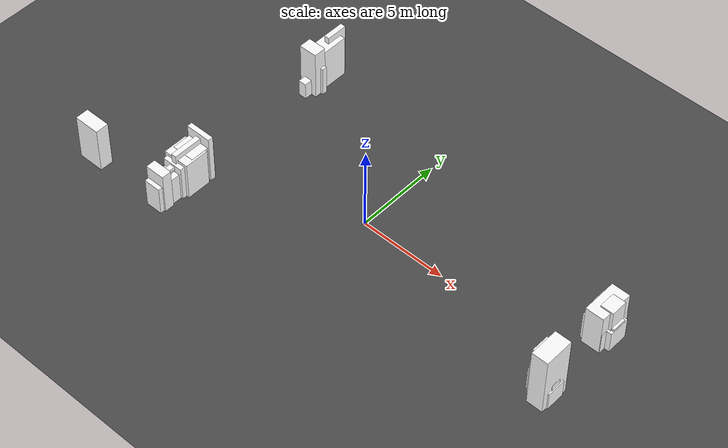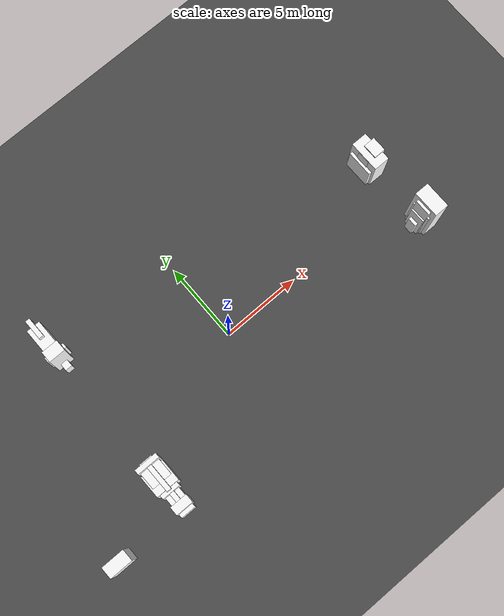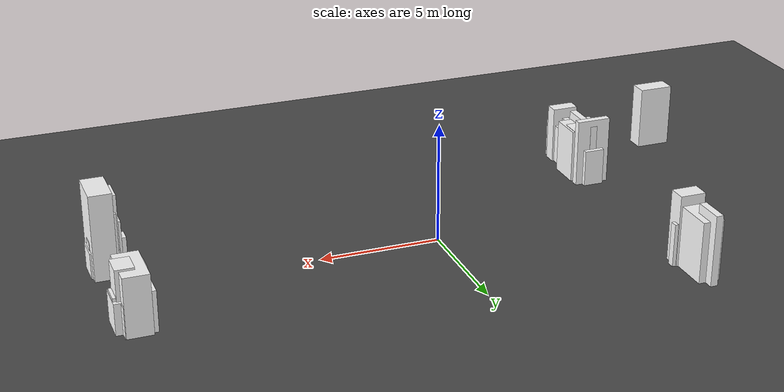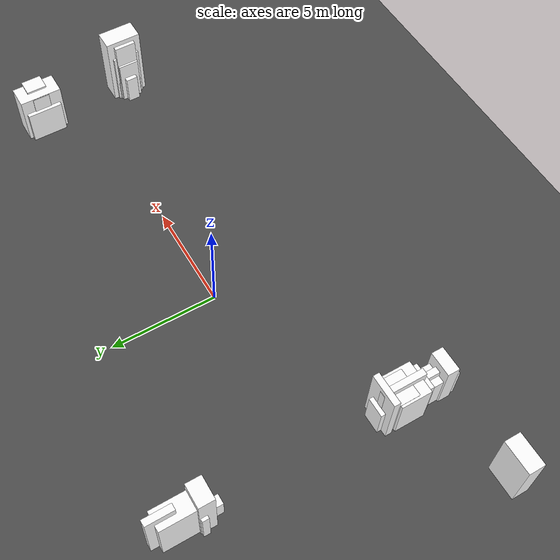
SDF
<sdf version="1.6">
 <world name="mirror_edge_world">
  <model name="ground_plane">
   <static>true</static>
   <link name="link">
    <collision name="collision">
     <geometry><plane><normal>0 0 1</normal><size>100 100</size></plane></geometry>
    </collision>
    <visual name="visual">
     <geometry><plane><normal>0 0 1</normal><size>100 100</size></plane></geometry>
     <material>
      <ambient>0.3 0.3 0.3 1</ambient>
      <diffuse>0.3 0.3 0.3 1</diffuse>
      <specular>0.5 0.5 0.5 1</specular>
      <emissive>0 0 0 1</emissive>
     </material>
    </visual>
   </link>
  </model>
  <model name="roadside_block_0_60_0">
   <static>true</static>
   <link name="link">
    <pose>13.2291969559636 2.496670991989923 1.2780243821680772 0 0 0</pose>
    <collision name="collision">
     <geometry><box><size>0.7523701492959062 0.9459473551256748 2.5560487643361545</size></box></geometry>
    </collision>
    <visual name="visual">
     <geometry><box><size>0.7523701492959062 0.9459473551256748 2.5560487643361545</size></box></geometry>
     <material>
      <ambient>1 1 1 1</ambient>
      <diffuse>1 1 1 1</diffuse>
      <specular>0.9 0.9 0.9 1</specular>
      <emissive>0.05 0.05 0.05 1</emissive>
     </material>
    </visual>
   </link>
  </model>
  <model name="roadside_block_0_61_0">
   <static>true</static>
   <link name="link">
    <pose>13.199283571896325 -2.1033290080100766 1.8044970207919566 0 0 0</pose>
    <collision name="collision">
     <geometry><box><size>0.9252940617336647 1.6936333954345684 3.6089940415839132</size></box></geometry>
    </collision>
    <visual name="visual">
     <geometry><box><size>0.9252940617336647 1.6936333954345684 3.6089940415839132</size></box></geometry>
     <material>
      <ambient>1 1 1 1</ambient>
      <diffuse>1 1 1 1</diffuse>
      <specular>0.9 0.9 0.9 1</specular>
      <emissive>0.05 0.05 0.05 1</emissive>
     </material>
    </visual>
   </link>
  </model>
  <model name="roadside_block_0_62_0">
   <static>true</static>
   <link name="link">
    <pose>13.169370187829053 2.496670991989923 0.7141956143638712 0 0 0</pose>
    <collision name="collision">
     <geometry><box><size>1.133888169362819 0.825111085626994 1.4283912287277425</size></box></geometry>
    </collision>
    <visual name="visual">
     <geometry><box><size>1.133888169362819 0.825111085626994 1.4283912287277425</size></box></geometry>
     <material>
      <ambient>1 1 1 1</ambient>
      <diffuse>1 1 1 1</diffuse>
      <specular>0.9 0.9 0.9 1</specular>
      <emissive>0.05 0.05 0.05 1</emissive>
     </material>
    </visual>
   </link>
  </model>
  <model name="roadside_block_0_63_0">
   <static>true</static>
   <link name="link">
    <pose>13.13945680376178 -2.1033290080100766 0.5408230810529004 0 0 0</pose>
    <collision name="collision">
     <geometry><box><size>1.19172148663598 1.081447437679071 1.081646162105801</size></box></geometry>
    </collision>
    <visual name="visual">
     <geometry><box><size>1.19172148663598 1.081447437679071 1.081646162105801</size></box></geometry>
     <material>
      <ambient>1 1 1 1</ambient>
      <diffuse>1 1 1 1</diffuse>
      <specular>0.9 0.9 0.9 1</specular>
      <emissive>0.05 0.05 0.05 1</emissive>
     </material>
    </visual>
   </link>
  </model>
  <model name="roadside_block_0_64_0">
   <static>true</static>
   <link name="link">
    <pose>13.109543419694505 2.496670991989923 0.6460491409482583 0 0 0</pose>
    <collision name="collision">
     <geometry><box><size>1.2808879513641809 1.216423987140057 1.2920982818965165</size></box></geometry>
    </collision>
    <visual name="visual">
     <geometry><box><size>1.2808879513641809 1.216423987140057 1.2920982818965165</size></box></geometry>
     <material>
      <ambient>1 1 1 1</ambient>
      <diffuse>1 1 1 1</diffuse>
      <specular>0.9 0.9 0.9 1</specular>
      <emissive>0.05 0.05 0.05 1</emissive>
     </material>
    </visual>
   </link>
  </model>
  <model name="roadside_block_0_65_0">
   <static>true</static>
   <link name="link">
    <pose>13.079630035627233 -2.1033290080100766 1.0048054624046208 0 0 0</pose>
    <collision name="collision">
     <geometry><box><size>1.073235619474701 0.5980408562832473 2.0096109248092415</size></box></geometry>
    </collision>
    <visual name="visual">
     <geometry><box><size>1.073235619474701 0.5980408562832473 2.0096109248092415</size></box></geometry>
     <material>
      <ambient>1 1 1 1</ambient>
      <diffuse>1 1 1 1</diffuse>
      <specular>0.9 0.9 0.9 1</specular>
      <emissive>0.05 0.05 0.05 1</emissive>
     </material>
    </visual>
   </link>
  </model>
  <model name="roadside_block_0_66_0">
   <static>true</static>
   <link name="link">
    <pose>13.04971665155996 2.496670991989923 0.6453863133050429 0 0 0</pose>
    <collision name="collision">
     <geometry><box><size>0.858200157639567 1.9722855353283018 1.2907726266100858</size></box></geometry>
    </collision>
    <visual name="visual">
     <geometry><box><size>0.858200157639567 1.9722855353283018 1.2907726266100858</size></box></geometry>
     <material>
      <ambient>1 1 1 1</ambient>
      <diffuse>1 1 1 1</diffuse>
      <specular>0.9 0.9 0.9 1</specular>
      <emissive>0.05 0.05 0.05 1</emissive>
     </material>
    </visual>
   </link>
  </model>
  <model name="roadside_block_0_67_0">
   <static>true</static>
   <link name="link">
    <pose>13.019803267492687 2.496670991989923 0.5321075928356416 0 0 0</pose>
    <collision name="collision">
     <geometry><box><size>1.3968280106473183 0.5333233486032147 1.0642151856712831</size></box></geometry>
    </collision>
    <visual name="visual">
     <geometry><box><size>1.3968280106473183 0.5333233486032147 1.0642151856712831</size></box></geometry>
     <material>
      <ambient>1 1 1 1</ambient>
      <diffuse>1 1 1 1</diffuse>
      <specular>0.9 0.9 0.9 1</specular>
      <emissive>0.05 0.05 0.05 1</emissive>
     </material>
    </visual>
   </link>
  </model>
  <model name="roadside_block_0_68_0">
   <static>true</static>
   <link name="link">
    <pose>12.989889883425413 -2.1033290080100766 0.6723400544085798 0 0 0</pose>
    <collision name="collision">
     <geometry><box><size>0.3 1.1466792959318663 1.3446801088171596</size></box></geometry>
    </collision>
    <visual name="visual">
     <geometry><box><size>0.3 1.1466792959318663 1.3446801088171596</size></box></geometry>
     <material>
      <ambient>1 1 1 1</ambient>
      <diffuse>1 1 1 1</diffuse>
      <specular>0.9 0.9 0.9 1</specular>
      <emissive>0.05 0.05 0.05 1</emissive>
     </material>
    </visual>
   </link>
  </model>
  <model name="roadside_block_0_69_0">
   <static>true</static>
   <link name="link">
    <pose>12.95997649935814 -2.1033290080100766 0.7117123567561049 0 0 0</pose>
    <collision name="collision">
     <geometry><box><size>1.4474998877966594 0.5608950036808114 1.4234247135122098</size></box></geometry>
    </collision>
    <visual name="visual">
     <geometry><box><size>1.4474998877966594 0.5608950036808114 1.4234247135122098</size></box></geometry>
     <material>
      <ambient>1 1 1 1</ambient>
      <diffuse>1 1 1 1</diffuse>
      <specular>0.9 0.9 0.9 1</specular>
      <emissive>0.05 0.05 0.05 1</emissive>
     </material>
    </visual>
   </link>
  </model>
  <model name="roadside_block_0_70_0">
   <static>true</static>
   <link name="link">
    <pose>12.930063115290867 2.496670991989923 1.234213338710715 0 0 0</pose>
    <collision name="collision">
     <geometry><box><size>1.0363355847285152 2.0 2.46842667742143</size></box></geometry>
    </collision>
    <visual name="visual">
     <geometry><box><size>1.0363355847285152 2.0 2.46842667742143</size></box></geometry>
     <material>
      <ambient>1 1 1 1</ambient>
      <diffuse>1 1 1 1</diffuse>
      <specular>0.9 0.9 0.9 1</specular>
      <emissive>0.05 0.05 0.05 1</emissive>
     </material>
    </visual>
   </link>
  </model>
  <model name="roadside_block_0_71_0">
   <static>true</static>
   <link name="link">
    <pose>12.900149731223593 -2.1033290080100766 1.1176426706234168 0 0 0</pose>
    <collision name="collision">
     <geometry><box><size>0.9081425352860963 0.9707374124296014 2.2352853412468336</size></box></geometry>
    </collision>
    <visual name="visual">
     <geometry><box><size>0.9081425352860963 0.9707374124296014 2.2352853412468336</size></box></geometry>
     <material>
      <ambient>1 1 1 1</ambient>
      <diffuse>1 1 1 1</diffuse>
      <specular>0.9 0.9 0.9 1</specular>
      <emissive>0.05 0.05 0.05 1</emissive>
     </material>
    </visual>
   </link>
  </model>
  <model name="roadside_block_0_72_0">
   <static>true</static>
   <link name="link">
    <pose>12.87023634715632 -2.1033290080100766 1.6838774126578437 0 0 0</pose>
    <collision name="collision">
     <geometry><box><size>0.641968632196994 1.016279046353737 3.3677548253156875</size></box></geometry>
    </collision>
    <visual name="visual">
     <geometry><box><size>0.641968632196994 1.016279046353737 3.3677548253156875</size></box></geometry>
     <material>
      <ambient>1 1 1 1</ambient>
      <diffuse>1 1 1 1</diffuse>
      <specular>0.9 0.9 0.9 1</specular>
      <emissive>0.05 0.05 0.05 1</emissive>
     </material>
    </visual>
   </link>
  </model>
  <model name="roadside_block_0_73_0">
   <static>true</static>
   <link name="link">
    <pose>12.840322963089045 2.496670991989923 1.2220399637515265 0 0 0</pose>
    <collision name="collision">
     <geometry><box><size>0.9191916911259636 0.800502657632286 2.444079927503053</size></box></geometry>
    </collision>
    <visual name="visual">
     <geometry><box><size>0.9191916911259636 0.800502657632286 2.444079927503053</size></box></geometry>
     <material>
      <ambient>1 1 1 1</ambient>
      <diffuse>1 1 1 1</diffuse>
      <specular>0.9 0.9 0.9 1</specular>
      <emissive>0.05 0.05 0.05 1</emissive>
     </material>
    </visual>
   </link>
  </model>
  <model name="roadside_block_0_74_0">
   <static>true</static>
   <link name="link">
    <pose>12.810409579021773 2.496670991989923 0.5 0 0 0</pose>
    <collision name="collision">
     <geometry><box><size>0.5436540283061269 0.3726882239082746 1.0</size></box></geometry>
    </collision>
    <visual name="visual">
     <geometry><box><size>0.5436540283061269 0.3726882239082746 1.0</size></box></geometry>
     <material>
      <ambient>1 1 1 1</ambient>
      <diffuse>1 1 1 1</diffuse>
      <specular>0.9 0.9 0.9 1</specular>
      <emissive>0.05 0.05 0.05 1</emissive>
     </material>
    </visual>
   </link>
  </model>
  <model name="roadside_block_0_75_0">
   <static>true</static>
   <link name="link">
    <pose>12.7804961949545 -2.1033290080100766 1.3211147076837984 0 0 0</pose>
    <collision name="collision">
     <geometry><box><size>0.32528378882911935 1.2792277091619053 2.6422294153675967</size></box></geometry>
    </collision>
    <visual name="visual">
     <geometry><box><size>0.32528378882911935 1.2792277091619053 2.6422294153675967</size></box></geometry>
     <material>
      <ambient>1 1 1 1</ambient>
      <diffuse>1 1 1 1</diffuse>
      <specular>0.9 0.9 0.9 1</specular>
      <emissive>0.05 0.05 0.05 1</emissive>
     </material>
    </visual>
   </link>
  </model>
  <model name="roadside_block_0_76_0">
   <static>true</static>
   <link name="link">
    <pose>12.750582810887225 2.496670991989923 0.8447417614059305 0 0 0</pose>
    <collision name="collision">
     <geometry><box><size>1.0721560679420052 1.6811049688401096 1.689483522811861</size></box></geometry>
    </collision>
    <visual name="visual">
     <geometry><box><size>1.0721560679420052 1.6811049688401096 1.689483522811861</size></box></geometry>
     <material>
      <ambient>1 1 1 1</ambient>
      <diffuse>1 1 1 1</diffuse>
      <specular>0.9 0.9 0.9 1</specular>
      <emissive>0.05 0.05 0.05 1</emissive>
     </material>
    </visual>
   </link>
  </model>
  <model name="roadside_block_1_0_0">
   <static>true</static>
   <link name="link">
    <pose>-12.952829554398544 -6.04 1.37298044220734 0 0 0</pose>
    <collision name="collision">
     <geometry><box><size>1.4832513960398992 0.7657304818971737 2.74596088441468</size></box></geometry>
    </collision>
    <visual name="visual">
     <geometry><box><size>1.4832513960398992 0.7657304818971737 2.74596088441468</size></box></geometry>
     <material>
      <ambient>1 1 1 1</ambient>
      <diffuse>1 1 1 1</diffuse>
      <specular>0.9 0.9 0.9 1</specular>
      <emissive>0.05 0.05 0.05 1</emissive>
     </material>
    </visual>
   </link>
  </model>
  <model name="roadside_block_1_1_0">
   <static>true</static>
   <link name="link">
    <pose>-8.352829554398546 -5.871221412250419 1.2283679619964332 0 0 0</pose>
    <collision name="collision">
     <geometry><box><size>1.1241115447503511 0.5582677667222311 2.4567359239928663</size></box></geometry>
    </collision>
    <visual name="visual">
     <geometry><box><size>1.1241115447503511 0.5582677667222311 2.4567359239928663</size></box></geometry>
     <material>
      <ambient>1 1 1 1</ambient>
      <diffuse>1 1 1 1</diffuse>
      <specular>0.9 0.9 0.9 1</specular>
      <emissive>0.05 0.05 0.05 1</emissive>
     </material>
    </visual>
   </link>
  </model>
  <model name="roadside_block_1_2_0">
   <static>true</static>
   <link name="link">
    <pose>-8.352829554398546 -5.702442824500838 0.8482425184715585 0 0 0</pose>
    <collision name="collision">
     <geometry><box><size>0.9585015456399949 1.400383406883193 1.696485036943117</size></box></geometry>
    </collision>
    <visual name="visual">
     <geometry><box><size>0.9585015456399949 1.400383406883193 1.696485036943117</size></box></geometry>
     <material>
      <ambient>1 1 1 1</ambient>
      <diffuse>1 1 1 1</diffuse>
      <specular>0.9 0.9 0.9 1</specular>
      <emissive>0.05 0.05 0.05 1</emissive>
     </material>
    </visual>
   </link>
  </model>
  <model name="roadside_block_1_4_0">
   <static>true</static>
   <link name="link">
    <pose>-8.352829554398546 -5.364885649001675 0.6514513765153278 0 0 0</pose>
    <collision name="collision">
     <geometry><box><size>0.6920847778744077 0.560019849877522 1.3029027530306556</size></box></geometry>
    </collision>
    <visual name="visual">
     <geometry><box><size>0.6920847778744077 0.560019849877522 1.3029027530306556</size></box></geometry>
     <material>
      <ambient>1 1 1 1</ambient>
      <diffuse>1 1 1 1</diffuse>
      <specular>0.9 0.9 0.9 1</specular>
      <emissive>0.05 0.05 0.05 1</emissive>
     </material>
    </visual>
   </link>
  </model>
  <model name="roadside_block_1_5_0">
   <static>true</static>
   <link name="link">
    <pose>-8.352829554398546 -5.196107061252094 1.0007892021257236 0 0 0</pose>
    <collision name="collision">
     <geometry><box><size>0.3 1.2615984184606117 2.0015784042514473</size></box></geometry>
    </collision>
    <visual name="visual">
     <geometry><box><size>0.3 1.2615984184606117 2.0015784042514473</size></box></geometry>
     <material>
      <ambient>1 1 1 1</ambient>
      <diffuse>1 1 1 1</diffuse>
      <specular>0.9 0.9 0.9 1</specular>
      <emissive>0.05 0.05 0.05 1</emissive>
     </material>
    </visual>
   </link>
  </model>
  <model name="roadside_block_1_7_0">
   <static>true</static>
   <link name="link">
    <pose>-8.352829554398546 -4.8585498857529315 0.9099431912945705 0 0 0</pose>
    <collision name="collision">
     <geometry><box><size>0.3 1.136711015768249 1.819886382589141</size></box></geometry>
    </collision>
    <visual name="visual">
     <geometry><box><size>0.3 1.136711015768249 1.819886382589141</size></box></geometry>
     <material>
      <ambient>1 1 1 1</ambient>
      <diffuse>1 1 1 1</diffuse>
      <specular>0.9 0.9 0.9 1</specular>
      <emissive>0.05 0.05 0.05 1</emissive>
     </material>
    </visual>
   </link>
  </model>
  <model name="roadside_block_1_9_0">
   <static>true</static>
   <link name="link">
    <pose>-8.352829554398546 -4.520992710253769 1.052566418460214 0 0 0</pose>
    <collision name="collision">
     <geometry><box><size>1.1891844028356813 0.9236357371844901 2.105132836920428</size></box></geometry>
    </collision>
    <visual name="visual">
     <geometry><box><size>1.1891844028356813 0.9236357371844901 2.105132836920428</size></box></geometry>
     <material>
      <ambient>1 1 1 1</ambient>
      <diffuse>1 1 1 1</diffuse>
      <specular>0.9 0.9 0.9 1</specular>
      <emissive>0.05 0.05 0.05 1</emissive>
     </material>
    </visual>
   </link>
  </model>
  <model name="roadside_block_1_12_0">
   <static>true</static>
   <link name="link">
    <pose>-8.352829554398546 -4.014656947005026 1.1426712029717823 0 0 0</pose>
    <collision name="collision">
     <geometry><box><size>1.517793857715955 1.406914735962204 2.2853424059435645</size></box></geometry>
    </collision>
    <visual name="visual">
     <geometry><box><size>1.517793857715955 1.406914735962204 2.2853424059435645</size></box></geometry>
     <material>
      <ambient>1 1 1 1</ambient>
      <diffuse>1 1 1 1</diffuse>
      <specular>0.9 0.9 0.9 1</specular>
      <emissive>0.05 0.05 0.05 1</emissive>
     </material>
    </visual>
   </link>
  </model>
  <model name="roadside_block_1_13_0">
   <static>true</static>
   <link name="link">
    <pose>-8.352829554398546 -3.845878359255444 1.3122621365222251 0 0 0</pose>
    <collision name="collision">
     <geometry><box><size>0.3 2.0 2.6245242730444502</size></box></geometry>
    </collision>
    <visual name="visual">
     <geometry><box><size>0.3 2.0 2.6245242730444502</size></box></geometry>
     <material>
      <ambient>1 1 1 1</ambient>
      <diffuse>1 1 1 1</diffuse>
      <specular>0.9 0.9 0.9 1</specular>
      <emissive>0.05 0.05 0.05 1</emissive>
     </material>
    </visual>
   </link>
  </model>
  <model name="roadside_block_1_14_0">
   <static>true</static>
   <link name="link">
    <pose>-8.352829554398546 -3.677099771505863 1.1479794933719243 0 0 0</pose>
    <collision name="collision">
     <geometry><box><size>1.2997083844749713 1.1020110814591895 2.2959589867438486</size></box></geometry>
    </collision>
    <visual name="visual">
     <geometry><box><size>1.2997083844749713 1.1020110814591895 2.2959589867438486</size></box></geometry>
     <material>
      <ambient>1 1 1 1</ambient>
      <diffuse>1 1 1 1</diffuse>
      <specular>0.9 0.9 0.9 1</specular>
      <emissive>0.05 0.05 0.05 1</emissive>
     </material>
    </visual>
   </link>
  </model>
  <model name="roadside_block_1_15_0">
   <static>true</static>
   <link name="link">
    <pose>-8.352829554398546 -3.5083211837562813 1.1318365091723097 0 0 0</pose>
    <collision name="collision">
     <geometry><box><size>0.5994956197124495 0.9274289819017232 2.2636730183446194</size></box></geometry>
    </collision>
    <visual name="visual">
     <geometry><box><size>0.5994956197124495 0.9274289819017232 2.2636730183446194</size></box></geometry>
     <material>
      <ambient>1 1 1 1</ambient>
      <diffuse>1 1 1 1</diffuse>
      <specular>0.9 0.9 0.9 1</specular>
      <emissive>0.05 0.05 0.05 1</emissive>
     </material>
    </visual>
   </link>
  </model>
  <model name="roadside_block_1_16_0">
   <static>true</static>
   <link name="link">
    <pose>-8.352829554398546 -3.3395425960067002 0.7919820244379148 0 0 0</pose>
    <collision name="collision">
     <geometry><box><size>0.8623062310948518 1.3809318458062947 1.5839640488758295</size></box></geometry>
    </collision>
    <visual name="visual">
     <geometry><box><size>0.8623062310948518 1.3809318458062947 1.5839640488758295</size></box></geometry>
     <material>
      <ambient>1 1 1 1</ambient>
      <diffuse>1 1 1 1</diffuse>
      <specular>0.9 0.9 0.9 1</specular>
      <emissive>0.05 0.05 0.05 1</emissive>
     </material>
    </visual>
   </link>
  </model>
  <model name="roadside_block_1_18_0">
   <static>true</static>
   <link name="link">
    <pose>-8.352829554398546 -3.001985420507538 1.4576205873503958 0 0 0</pose>
    <collision name="collision">
     <geometry><box><size>1.4705098240515784 0.3 2.9152411747007916</size></box></geometry>
    </collision>
    <visual name="visual">
     <geometry><box><size>1.4705098240515784 0.3 2.9152411747007916</size></box></geometry>
     <material>
      <ambient>1 1 1 1</ambient>
      <diffuse>1 1 1 1</diffuse>
      <specular>0.9 0.9 0.9 1</specular>
      <emissive>0.05 0.05 0.05 1</emissive>
     </material>
    </visual>
   </link>
  </model>
  <model name="roadside_block_1_64_0">
   <static>true</static>
   <link name="link">
    <pose>-8.352829554398546 4.761829615973199 0.5 0 0 0</pose>
    <collision name="collision">
     <geometry><box><size>0.44891020762682976 0.9457848896424027 1.0</size></box></geometry>
    </collision>
    <visual name="visual">
     <geometry><box><size>0.44891020762682976 0.9457848896424027 1.0</size></box></geometry>
     <material>
      <ambient>1 1 1 1</ambient>
      <diffuse>1 1 1 1</diffuse>
      <specular>0.9 0.9 0.9 1</specular>
      <emissive>0.05 0.05 0.05 1</emissive>
     </material>
    </visual>
   </link>
  </model>
  <model name="roadside_block_1_66_0">
   <static>true</static>
   <link name="link">
    <pose>-8.352829554398546 5.09938679147236 1.4935637189410833 0 0 0</pose>
    <collision name="collision">
     <geometry><box><size>1.0602874573737624 0.7178266161379678 2.9871274378821666</size></box></geometry>
    </collision>
    <visual name="visual">
     <geometry><box><size>1.0602874573737624 0.7178266161379678 2.9871274378821666</size></box></geometry>
     <material>
      <ambient>1 1 1 1</ambient>
      <diffuse>1 1 1 1</diffuse>
      <specular>0.9 0.9 0.9 1</specular>
      <emissive>0.05 0.05 0.05 1</emissive>
     </material>
    </visual>
   </link>
  </model>
  <model name="roadside_block_1_67_0">
   <static>true</static>
   <link name="link">
    <pose>-8.352829554398546 5.268165379221942 0.8967062033959786 0 0 0</pose>
    <collision name="collision">
     <geometry><box><size>1.3477824619368528 0.3 1.7934124067919572</size></box></geometry>
    </collision>
    <visual name="visual">
     <geometry><box><size>1.3477824619368528 0.3 1.7934124067919572</size></box></geometry>
     <material>
      <ambient>1 1 1 1</ambient>
      <diffuse>1 1 1 1</diffuse>
      <specular>0.9 0.9 0.9 1</specular>
      <emissive>0.05 0.05 0.05 1</emissive>
     </material>
    </visual>
   </link>
  </model>
  <model name="roadside_block_1_70_0">
   <static>true</static>
   <link name="link">
    <pose>-8.352829554398546 5.774501142470686 1.025132658726457 0 0 0</pose>
    <collision name="collision">
     <geometry><box><size>0.8742993848067663 1.7708146227697552 2.050265317452914</size></box></geometry>
    </collision>
    <visual name="visual">
     <geometry><box><size>0.8742993848067663 1.7708146227697552 2.050265317452914</size></box></geometry>
     <material>
      <ambient>1 1 1 1</ambient>
      <diffuse>1 1 1 1</diffuse>
      <specular>0.9 0.9 0.9 1</specular>
      <emissive>0.05 0.05 0.05 1</emissive>
     </material>
    </visual>
   </link>
  </model>
  <model name="roadside_block_1_72_0">
   <static>true</static>
   <link name="link">
    <pose>-8.352829554398546 6.112058317969848 1.2814476129120216 0 0 0</pose>
    <collision name="collision">
     <geometry><box><size>0.883661568622002 1.8581872525289747 2.562895225824043</size></box></geometry>
    </collision>
    <visual name="visual">
     <geometry><box><size>0.883661568622002 1.8581872525289747 2.562895225824043</size></box></geometry>
     <material>
      <ambient>1 1 1 1</ambient>
      <diffuse>1 1 1 1</diffuse>
      <specular>0.9 0.9 0.9 1</specular>
      <emissive>0.05 0.05 0.05 1</emissive>
     </material>
    </visual>
   </link>
  </model>
  <model name="roadside_block_1_76_0">
   <static>true</static>
   <link name="link">
    <pose>-8.352829554398546 6.787172668968172 1.4809069461274023 0 0 0</pose>
    <collision name="collision">
     <geometry><box><size>0.3 1.2558954845030976 2.9618138922548045</size></box></geometry>
    </collision>
    <visual name="visual">
     <geometry><box><size>0.3 1.2558954845030976 2.9618138922548045</size></box></geometry>
     <material>
      <ambient>1 1 1 1</ambient>
      <diffuse>1 1 1 1</diffuse>
      <specular>0.9 0.9 0.9 1</specular>
      <emissive>0.05 0.05 0.05 1</emissive>
     </material>
    </visual>
   </link>
  </model>
 </world>
</sdf>
